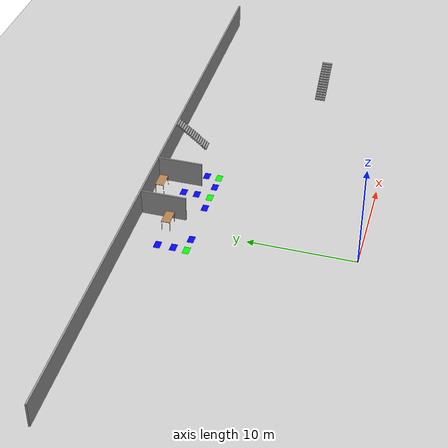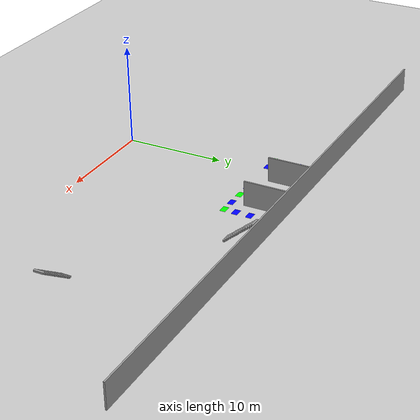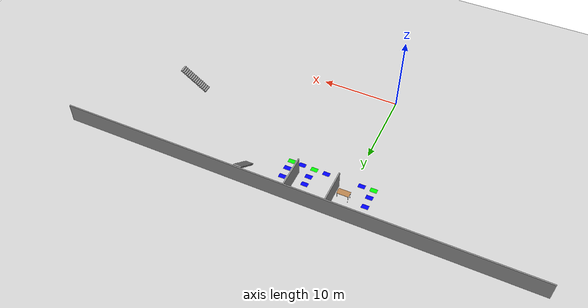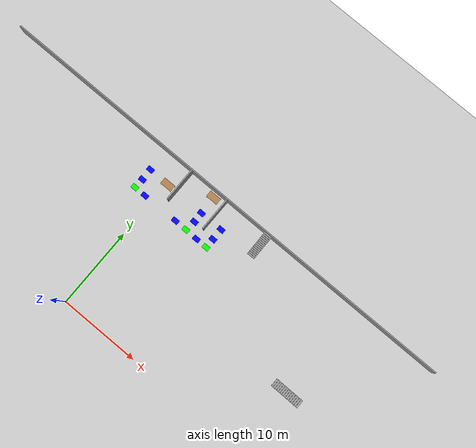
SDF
<sdf version="1.6">
 <world name="default">
  <model name="ground_plane">
   <pose>0 0 0.001 0 -0 0</pose>
   <static>1</static>
   <link name="link">
    <collision name="collision">
     <geometry><plane><normal>0 0 1</normal><size>100 100</size></plane></geometry>
     <surface><friction><ode><mu>100</mu><mu2>50</mu2></ode></friction></surface>
    </collision>
    <visual name="visual">
     <cast_shadows>0</cast_shadows>
     <geometry><plane><normal>0 0 1</normal><size>100 100</size></plane></geometry>
     <material>
      <script><uri>file://media/materials/scripts/gazebo.material</uri><name>Gazebo/Grey</name></script>
     </material>
    </visual>
   </link>
  </model>
  <model name="table_6">
   <static>1</static>
   <link name="link">
    <collision name="surface">
     <pose>0 0 1 0 -0 0</pose>
     <geometry><box><size>1.5 0.8 0.03</size></box></geometry>
     <surface><friction><ode><mu>0.6</mu><mu2>0.6</mu2></ode></friction></surface>
    </collision>
    <visual name="visual1">
     <pose>0 0 1 0 -0 0</pose>
     <geometry><box><size>1.5 0.8 0.03</size></box></geometry>
     <material>
      <script><uri>file://media/materials/scripts/gazebo.material</uri><name>Gazebo/Wood</name></script>
     </material>
    </visual>
    <collision name="front_left_leg">
     <pose>0.68 0.38 0.5 0 -0 0</pose>
     <geometry><cylinder><radius>0.02</radius><length>1</length></cylinder></geometry>
    </collision>
    <visual name="front_left_leg">
     <pose>0.68 0.38 0.5 0 -0 0</pose>
     <geometry><cylinder><radius>0.02</radius><length>1</length></cylinder></geometry>
     <material>
      <script><uri>file://media/materials/scripts/gazebo.material</uri><name>Gazebo/Grey</name></script>
     </material>
    </visual>
    <collision name="front_right_leg">
     <pose>0.68 -0.38 0.5 0 -0 0</pose>
     <geometry><cylinder><radius>0.02</radius><length>1</length></cylinder></geometry>
    </collision>
    <visual name="front_right_leg">
     <pose>0.68 -0.38 0.5 0 -0 0</pose>
     <geometry><cylinder><radius>0.02</radius><length>1</length></cylinder></geometry>
     <material>
      <script><uri>file://media/materials/scripts/gazebo.material</uri><name>Gazebo/Grey</name></script>
     </material>
    </visual>
    <collision name="back_right_leg">
     <pose>-0.68 -0.38 0.5 0 -0 0</pose>
     <geometry><cylinder><radius>0.02</radius><length>1</length></cylinder></geometry>
    </collision>
    <visual name="back_right_leg">
     <pose>-0.68 -0.38 0.5 0 -0 0</pose>
     <geometry><cylinder><radius>0.02</radius><length>1</length></cylinder></geometry>
     <material>
      <script><uri>file://media/materials/scripts/gazebo.material</uri><name>Gazebo/Grey</name></script>
     </material>
    </visual>
    <collision name="back_left_leg">
     <pose>-0.68 0.38 0.5 0 -0 0</pose>
     <geometry><cylinder><radius>0.02</radius><length>1</length></cylinder></geometry>
    </collision>
    <visual name="back_left_leg">
     <pose>-0.68 0.38 0.5 0 -0 0</pose>
     <geometry><cylinder><radius>0.02</radius><length>1</length></cylinder></geometry>
     <material>
      <script><uri>file://media/materials/scripts/gazebo.material</uri><name>Gazebo/Grey</name></script>
     </material>
    </visual>
   </link>
   <pose>0.272964 17.3657 0.001 0 -0 0</pose>
  </model>
  <model name="table_11">
   <static>1</static>
   <link name="link">
    <collision name="surface">
     <pose>0 0 1 0 -0 0</pose>
     <geometry><box><size>1.5 0.8 0.03</size></box></geometry>
     <surface><friction><ode><mu>0.6</mu><mu2>0.6</mu2></ode></friction></surface>
    </collision>
    <visual name="visual1">
     <pose>0 0 1 0 -0 0</pose>
     <geometry><box><size>1.5 0.8 0.03</size></box></geometry>
     <material>
      <script><uri>file://media/materials/scripts/gazebo.material</uri><name>Gazebo/Wood</name></script>
     </material>
    </visual>
    <collision name="front_left_leg">
     <pose>0.68 0.38 0.5 0 -0 0</pose>
     <geometry><cylinder><radius>0.02</radius><length>1</length></cylinder></geometry>
    </collision>
    <visual name="front_left_leg">
     <pose>0.68 0.38 0.5 0 -0 0</pose>
     <geometry><cylinder><radius>0.02</radius><length>1</length></cylinder></geometry>
     <material>
      <script><uri>file://media/materials/scripts/gazebo.material</uri><name>Gazebo/Grey</name></script>
     </material>
    </visual>
    <collision name="front_right_leg">
     <pose>0.68 -0.38 0.5 0 -0 0</pose>
     <geometry><cylinder><radius>0.02</radius><length>1</length></cylinder></geometry>
    </collision>
    <visual name="front_right_leg">
     <pose>0.68 -0.38 0.5 0 -0 0</pose>
     <geometry><cylinder><radius>0.02</radius><length>1</length></cylinder></geometry>
     <material>
      <script><uri>file://media/materials/scripts/gazebo.material</uri><name>Gazebo/Grey</name></script>
     </material>
    </visual>
    <collision name="back_right_leg">
     <pose>-0.68 -0.38 0.5 0 -0 0</pose>
     <geometry><cylinder><radius>0.02</radius><length>1</length></cylinder></geometry>
    </collision>
    <visual name="back_right_leg">
     <pose>-0.68 -0.38 0.5 0 -0 0</pose>
     <geometry><cylinder><radius>0.02</radius><length>1</length></cylinder></geometry>
     <material>
      <script><uri>file://media/materials/scripts/gazebo.material</uri><name>Gazebo/Grey</name></script>
     </material>
    </visual>
    <collision name="back_left_leg">
     <pose>-0.68 0.38 0.5 0 -0 0</pose>
     <geometry><cylinder><radius>0.02</radius><length>1</length></cylinder></geometry>
    </collision>
    <visual name="back_left_leg">
     <pose>-0.68 0.38 0.5 0 -0 0</pose>
     <geometry><cylinder><radius>0.02</radius><length>1</length></cylinder></geometry>
     <material>
      <script><uri>file://media/materials/scripts/gazebo.material</uri><name>Gazebo/Grey</name></script>
     </material>
    </visual>
   </link>
   <pose>5.18073 19.5521 0.001 0 -0 0</pose>
  </model>
  <model name="corridor_10">
   <link name="link">
    <pose>0 0 0.001 0 -0 0</pose>
    <inertial>
     <mass>0.0352517</mass>
     <inertia>
      <ixx>0.00099707</ixx>
      <ixy>0</ixy>
      <ixz>0</ixz>
      <iyy>0.00220147</iyy>
      <iyz>0</iyz>
      <izz>0.0031692</izz>
     </inertia>
     <pose>0 0 0.001 0 -0 0</pose>
    </inertial>
    <visual name="visual">
     <geometry><box><size>0.862743 0.578289 1e-06</size></box></geometry>
     <material>
      <script><name>Gazebo/Grey</name><uri>file://media/materials/scripts/gazebo.material</uri></script>
      <ambient>0 1 0 1</ambient>
      <diffuse>0 1 0 1</diffuse>
      <specular>0 1 0 1</specular>
      <emissive>0 1 0 1</emissive>
      <shader type="vertex"><normal_map>__default__</normal_map></shader>
     </material>
     <pose>0 0 0.001 0 -0 0</pose>
    </visual>
    <collision name="collision">
     <pose>0 0 0.001 0 -0 0</pose>
     <geometry><box><size>0.862743 0.578289 0.000477</size></box></geometry>
     <surface>
      <friction>
       <ode><mu>1</mu><mu2>1</mu2><fdir1>0 0 0</fdir1><slip1>0</slip1><slip2>0</slip2></ode>
       <torsional>
        <coefficient>1</coefficient>
        <patch_radius>0</patch_radius>
        <surface_radius>0</surface_radius>
        <use_patch_radius>1</use_patch_radius>
        <ode><slip>0</slip></ode>
       </torsional>
      </friction>
      <bounce><restitution_coefficient>0</restitution_coefficient><threshold>1e+06</threshold></bounce>
      <contact>
       <collide_without_contact>0</collide_without_contact>
       <collide_without_contact_bitmask>1</collide_without_contact_bitmask>
       <collide_bitmask>1</collide_bitmask>
       <ode>
        <soft_cfm>0</soft_cfm>
        <soft_erp>0.2</soft_erp>
        <kp>1e+13</kp>
        <kd>1</kd>
        <max_vel>0.01</max_vel>
        <min_depth>0</min_depth>
       </ode>
       <bullet>
        <split_impulse>1</split_impulse>
        <split_impulse_penetration_threshold>-0.01</split_impulse_penetration_threshold>
        <soft_cfm>0</soft_cfm>
        <soft_erp>0.2</soft_erp>
        <kp>1e+13</kp>
        <kd>1</kd>
       </bullet>
      </contact>
     </surface>
    </collision>
   </link>
   <static>1</static>
   <pose>8.06738 14.7859 0 0 -0 0</pose>
  </model>
  <model name="corridor_11">
   <link name="link">
    <pose>0 0 0.001 0 -0 0</pose>
    <inertial>
     <mass>0.0352517</mass>
     <inertia>
      <ixx>0.00099707</ixx>
      <ixy>0</ixy>
      <ixz>0</ixz>
      <iyy>0.00220147</iyy>
      <iyz>0</iyz>
      <izz>0.0031692</izz>
     </inertia>
     <pose>0 0 0.001 0 -0 0</pose>
    </inertial>
    <visual name="visual">
     <geometry><box><size>0.862743 0.578289 1e-06</size></box></geometry>
     <material>
      <script><name>Gazebo/Grey</name><uri>file://media/materials/scripts/gazebo.material</uri></script>
      <ambient>0 1 0 1</ambient>
      <diffuse>0 1 0 1</diffuse>
      <specular>0 1 0 1</specular>
      <emissive>0 1 0 1</emissive>
      <shader type="vertex"><normal_map>__default__</normal_map></shader>
     </material>
     <pose>0 0 0.001 0 -0 0</pose>
    </visual>
    <collision name="collision">
     <pose>0 0 0.001 0 -0 0</pose>
     <geometry><box><size>0.862743 0.578289 0.000477</size></box></geometry>
     <surface>
      <friction>
       <ode><mu>1</mu><mu2>1</mu2><fdir1>0 0 0</fdir1><slip1>0</slip1><slip2>0</slip2></ode>
       <torsional>
        <coefficient>1</coefficient>
        <patch_radius>0</patch_radius>
        <surface_radius>0</surface_radius>
        <use_patch_radius>1</use_patch_radius>
        <ode><slip>0</slip></ode>
       </torsional>
      </friction>
      <bounce><restitution_coefficient>0</restitution_coefficient><threshold>1e+06</threshold></bounce>
      <contact>
       <collide_without_contact>0</collide_without_contact>
       <collide_without_contact_bitmask>1</collide_without_contact_bitmask>
       <collide_bitmask>1</collide_bitmask>
       <ode>
        <soft_cfm>0</soft_cfm>
        <soft_erp>0.2</soft_erp>
        <kp>1e+13</kp>
        <kd>1</kd>
        <max_vel>0.01</max_vel>
        <min_depth>0</min_depth>
       </ode>
       <bullet>
        <split_impulse>1</split_impulse>
        <split_impulse_penetration_threshold>-0.01</split_impulse_penetration_threshold>
        <soft_cfm>0</soft_cfm>
        <soft_erp>0.2</soft_erp>
        <kp>1e+13</kp>
        <kd>1</kd>
       </bullet>
      </contact>
     </surface>
    </collision>
   </link>
   <static>1</static>
   <pose>5.04547 14.8469 0 0 -0 0</pose>
  </model>
  <model name="intersection_20">
   <link name="link">
    <pose>0 0 0.001 0 -0 0</pose>
    <inertial>
     <mass>0.0352517</mass>
     <inertia>
      <ixx>0.000997067</ixx>
      <ixy>0</ixy>
      <ixz>0</ixz>
      <iyy>0.00220147</iyy>
      <iyz>0</iyz>
      <izz>0.0031692</izz>
     </inertia>
     <pose>0 0 0.001 0 -0 0</pose>
    </inertial>
    <visual name="visual">
     <geometry><box><size>0.862743 0.578289 1e-06</size></box></geometry>
     <material>
      <script><name>Gazebo/Grey</name><uri>file://media/materials/scripts/gazebo.material</uri></script>
      <ambient>0 0 1 1</ambient>
      <diffuse>0 0 1 1</diffuse>
      <specular>0 0 1 1</specular>
      <emissive>0 0 1 1</emissive>
      <shader type="vertex"><normal_map>__default__</normal_map></shader>
     </material>
     <pose>0 0 0.001 0 -0 0</pose>
    </visual>
    <collision name="collision">
     <pose>0 0 0.001 0 -0 0</pose>
     <geometry><box><size>0.862743 0.578289 0.000477</size></box></geometry>
     <surface>
      <friction>
       <ode><mu>1</mu><mu2>1</mu2><fdir1>0 0 0</fdir1><slip1>0</slip1><slip2>0</slip2></ode>
       <torsional>
        <coefficient>1</coefficient>
        <patch_radius>0</patch_radius>
        <surface_radius>0</surface_radius>
        <use_patch_radius>1</use_patch_radius>
        <ode><slip>0</slip></ode>
       </torsional>
      </friction>
      <bounce><restitution_coefficient>0</restitution_coefficient><threshold>1e+06</threshold></bounce>
      <contact>
       <collide_without_contact>0</collide_without_contact>
       <collide_without_contact_bitmask>1</collide_without_contact_bitmask>
       <collide_bitmask>1</collide_bitmask>
       <ode>
        <soft_cfm>0</soft_cfm>
        <soft_erp>0.2</soft_erp>
        <kp>1e+13</kp>
        <kd>1</kd>
        <max_vel>0.01</max_vel>
        <min_depth>0</min_depth>
       </ode>
       <bullet>
        <split_impulse>1</split_impulse>
        <split_impulse_penetration_threshold>-0.01</split_impulse_penetration_threshold>
        <soft_cfm>0</soft_cfm>
        <soft_erp>0.2</soft_erp>
        <kp>1e+13</kp>
        <kd>1</kd>
       </bullet>
      </contact>
     </surface>
    </collision>
   </link>
   <static>1</static>
   <pose>8.08666 15.9813 0 0 -0 0</pose>
  </model>
  <model name="intersection_22">
   <link name="link">
    <pose>0 0 0.001 0 -0 0</pose>
    <inertial>
     <mass>0.0352517</mass>
     <inertia>
      <ixx>0.000997067</ixx>
      <ixy>0</ixy>
      <ixz>0</ixz>
      <iyy>0.00220147</iyy>
      <iyz>0</iyz>
      <izz>0.0031692</izz>
     </inertia>
     <pose>0 0 0.001 0 -0 0</pose>
    </inertial>
    <visual name="visual">
     <geometry><box><size>0.862743 0.578289 1e-06</size></box></geometry>
     <material>
      <script><name>Gazebo/Grey</name><uri>file://media/materials/scripts/gazebo.material</uri></script>
      <ambient>0 0 1 1</ambient>
      <diffuse>0 0 1 1</diffuse>
      <specular>0 0 1 1</specular>
      <emissive>0 0 1 1</emissive>
      <shader type="vertex"><normal_map>__default__</normal_map></shader>
     </material>
     <pose>0 0 0.001 0 -0 0</pose>
    </visual>
    <collision name="collision">
     <pose>0 0 0.001 0 -0 0</pose>
     <geometry><box><size>0.862743 0.578289 0.000477</size></box></geometry>
     <surface>
      <friction>
       <ode><mu>1</mu><mu2>1</mu2><fdir1>0 0 0</fdir1><slip1>0</slip1><slip2>0</slip2></ode>
       <torsional>
        <coefficient>1</coefficient>
        <patch_radius>0</patch_radius>
        <surface_radius>0</surface_radius>
        <use_patch_radius>1</use_patch_radius>
        <ode><slip>0</slip></ode>
       </torsional>
      </friction>
      <bounce><restitution_coefficient>0</restitution_coefficient><threshold>1e+06</threshold></bounce>
      <contact>
       <collide_without_contact>0</collide_without_contact>
       <collide_without_contact_bitmask>1</collide_without_contact_bitmask>
       <collide_bitmask>1</collide_bitmask>
       <ode>
        <soft_cfm>0</soft_cfm>
        <soft_erp>0.2</soft_erp>
        <kp>1e+13</kp>
        <kd>1</kd>
        <max_vel>0.01</max_vel>
        <min_depth>0</min_depth>
       </ode>
       <bullet>
        <split_impulse>1</split_impulse>
        <split_impulse_penetration_threshold>-0.01</split_impulse_penetration_threshold>
        <soft_cfm>0</soft_cfm>
        <soft_erp>0.2</soft_erp>
        <kp>1e+13</kp>
        <kd>1</kd>
       </bullet>
      </contact>
     </surface>
    </collision>
   </link>
   <static>1</static>
   <pose>5.209 16.1439 0 0 -0 0</pose>
  </model>
  <model name="corridor_13">
   <link name="link">
    <pose>0 0 0.001 0 -0 0</pose>
    <inertial>
     <mass>0.0352517</mass>
     <inertia>
      <ixx>0.00099707</ixx>
      <ixy>0</ixy>
      <ixz>0</ixz>
      <iyy>0.00220147</iyy>
      <iyz>0</iyz>
      <izz>0.0031692</izz>
     </inertia>
     <pose>0 0 0.001 0 -0 0</pose>
    </inertial>
    <visual name="visual">
     <geometry><box><size>0.862743 0.578289 1e-06</size></box></geometry>
     <material>
      <script><name>Gazebo/Grey</name><uri>file://media/materials/scripts/gazebo.material</uri></script>
      <ambient>0 1 0 1</ambient>
      <diffuse>0 1 0 1</diffuse>
      <specular>0 1 0 1</specular>
      <emissive>0 1 0 1</emissive>
      <shader type="vertex"><normal_map>__default__</normal_map></shader>
     </material>
     <pose>0 0 0.001 0 -0 0</pose>
    </visual>
    <collision name="collision">
     <pose>0 0 0.001 0 -0 0</pose>
     <geometry><box><size>0.862743 0.578289 0.000477</size></box></geometry>
     <surface>
      <friction>
       <ode><mu>1</mu><mu2>1</mu2><fdir1>0 0 0</fdir1><slip1>0</slip1><slip2>0</slip2></ode>
       <torsional>
        <coefficient>1</coefficient>
        <patch_radius>0</patch_radius>
        <surface_radius>0</surface_radius>
        <use_patch_radius>1</use_patch_radius>
        <ode><slip>0</slip></ode>
       </torsional>
      </friction>
      <bounce><restitution_coefficient>0</restitution_coefficient><threshold>1e+06</threshold></bounce>
      <contact>
       <collide_without_contact>0</collide_without_contact>
       <collide_without_contact_bitmask>1</collide_without_contact_bitmask>
       <collide_bitmask>1</collide_bitmask>
       <ode>
        <soft_cfm>0</soft_cfm>
        <soft_erp>0.2</soft_erp>
        <kp>1e+13</kp>
        <kd>1</kd>
        <max_vel>0.01</max_vel>
        <min_depth>0</min_depth>
       </ode>
       <bullet>
        <split_impulse>1</split_impulse>
        <split_impulse_penetration_threshold>-0.01</split_impulse_penetration_threshold>
        <soft_cfm>0</soft_cfm>
        <soft_erp>0.2</soft_erp>
        <kp>1e+13</kp>
        <kd>1</kd>
       </bullet>
      </contact>
     </surface>
    </collision>
   </link>
   <static>1</static>
   <pose>-2.50576 14.8019 0 0 -0 0</pose>
  </model>
  <model name="intersection_23">
   <link name="link">
    <pose>0 0 0.001 0 -0 0</pose>
    <inertial>
     <mass>0.0352517</mass>
     <inertia>
      <ixx>0.000997067</ixx>
      <ixy>0</ixy>
      <ixz>0</ixz>
      <iyy>0.00220147</iyy>
      <iyz>0</iyz>
      <izz>0.0031692</izz>
     </inertia>
     <pose>0 0 0.001 0 -0 0</pose>
    </inertial>
    <visual name="visual">
     <geometry><box><size>0.862743 0.578289 1e-06</size></box></geometry>
     <material>
      <script><name>Gazebo/Grey</name><uri>file://media/materials/scripts/gazebo.material</uri></script>
      <ambient>0 0 1 1</ambient>
      <diffuse>0 0 1 1</diffuse>
      <specular>0 0 1 1</specular>
      <emissive>0 0 1 1</emissive>
      <shader type="vertex"><normal_map>__default__</normal_map></shader>
     </material>
     <pose>0 0 0.001 0 -0 0</pose>
    </visual>
    <collision name="collision">
     <pose>0 0 0.001 0 -0 0</pose>
     <geometry><box><size>0.862743 0.578289 0.000477</size></box></geometry>
     <surface>
      <friction>
       <ode><mu>1</mu><mu2>1</mu2><fdir1>0 0 0</fdir1><slip1>0</slip1><slip2>0</slip2></ode>
       <torsional>
        <coefficient>1</coefficient>
        <patch_radius>0</patch_radius>
        <surface_radius>0</surface_radius>
        <use_patch_radius>1</use_patch_radius>
        <ode><slip>0</slip></ode>
       </torsional>
      </friction>
      <bounce><restitution_coefficient>0</restitution_coefficient><threshold>1e+06</threshold></bounce>
      <contact>
       <collide_without_contact>0</collide_without_contact>
       <collide_without_contact_bitmask>1</collide_without_contact_bitmask>
       <collide_bitmask>1</collide_bitmask>
       <ode>
        <soft_cfm>0</soft_cfm>
        <soft_erp>0.2</soft_erp>
        <kp>1e+13</kp>
        <kd>1</kd>
        <max_vel>0.01</max_vel>
        <min_depth>0</min_depth>
       </ode>
       <bullet>
        <split_impulse>1</split_impulse>
        <split_impulse_penetration_threshold>-0.01</split_impulse_penetration_threshold>
        <soft_cfm>0</soft_cfm>
        <soft_erp>0.2</soft_erp>
        <kp>1e+13</kp>
        <kd>1</kd>
       </bullet>
      </contact>
     </surface>
    </collision>
   </link>
   <static>1</static>
   <pose>-2.42973 16.0203 0 0 -0 0</pose>
  </model>
  <model name="intersection_6">
   <link name="link">
    <pose>0 0 0.001 0 -0 0</pose>
    <inertial>
     <mass>0.0352517</mass>
     <inertia>
      <ixx>0.000997067</ixx>
      <ixy>0</ixy>
      <ixz>0</ixz>
      <iyy>0.00220147</iyy>
      <iyz>0</iyz>
      <izz>0.0031692</izz>
     </inertia>
     <pose>0 0 0.001 0 -0 0</pose>
    </inertial>
    <visual name="visual">
     <geometry><box><size>0.862743 0.578289 1e-06</size></box></geometry>
     <material>
      <script><name>Gazebo/Grey</name><uri>file://media/materials/scripts/gazebo.material</uri></script>
      <ambient>0 0 1 1</ambient>
      <diffuse>0 0 1 1</diffuse>
      <specular>0 0 1 1</specular>
      <emissive>0 0 1 1</emissive>
      <shader type="vertex"><normal_map>__default__</normal_map></shader>
     </material>
     <pose>0 0 0.001 0 -0 0</pose>
    </visual>
    <collision name="collision">
     <pose>0 0 0.001 0 -0 0</pose>
     <geometry><box><size>0.862743 0.578289 0.000477</size></box></geometry>
     <surface>
      <friction>
       <ode><mu>1</mu><mu2>1</mu2><fdir1>0 0 0</fdir1><slip1>0</slip1><slip2>0</slip2></ode>
       <torsional>
        <coefficient>1</coefficient>
        <patch_radius>0</patch_radius>
        <surface_radius>0</surface_radius>
        <use_patch_radius>1</use_patch_radius>
        <ode><slip>0</slip></ode>
       </torsional>
      </friction>
      <bounce><restitution_coefficient>0</restitution_coefficient><threshold>1e+06</threshold></bounce>
      <contact>
       <collide_without_contact>0</collide_without_contact>
       <collide_without_contact_bitmask>1</collide_without_contact_bitmask>
       <collide_bitmask>1</collide_bitmask>
       <ode>
        <soft_cfm>0</soft_cfm>
        <soft_erp>0.2</soft_erp>
        <kp>1e+13</kp>
        <kd>1</kd>
        <max_vel>0.01</max_vel>
        <min_depth>0</min_depth>
       </ode>
       <bullet>
        <split_impulse>1</split_impulse>
        <split_impulse_penetration_threshold>-0.01</split_impulse_penetration_threshold>
        <soft_cfm>0</soft_cfm>
        <soft_erp>0.2</soft_erp>
        <kp>1e+13</kp>
        <kd>1</kd>
       </bullet>
      </contact>
     </surface>
    </collision>
   </link>
   <static>1</static>
   <pose>-1.01311 14.8032 0 0 -0 0</pose>
  </model>
  <model name="intersection_51">
   <link name="link">
    <pose>0 0 0.001 0 -0 0</pose>
    <inertial>
     <mass>0.0352517</mass>
     <inertia>
      <ixx>0.000997067</ixx>
      <ixy>0</ixy>
      <ixz>0</ixz>
      <iyy>0.00220147</iyy>
      <iyz>0</iyz>
      <izz>0.0031692</izz>
     </inertia>
     <pose>0 0 0.001 0 -0 0</pose>
    </inertial>
    <visual name="visual">
     <geometry><box><size>0.862743 0.578289 1e-06</size></box></geometry>
     <material>
      <script><name>Gazebo/Grey</name><uri>file://media/materials/scripts/gazebo.material</uri></script>
      <ambient>0 0 1 1</ambient>
      <diffuse>0 0 1 1</diffuse>
      <specular>0 0 1 1</specular>
      <emissive>0 0 1 1</emissive>
      <shader type="vertex"><normal_map>__default__</normal_map></shader>
     </material>
     <pose>0 0 0.001 0 -0 0</pose>
    </visual>
    <collision name="collision">
     <pose>0 0 0.001 0 -0 0</pose>
     <geometry><box><size>0.862743 0.578289 0.000477</size></box></geometry>
     <surface>
      <friction>
       <ode><mu>1</mu><mu2>1</mu2><fdir1>0 0 0</fdir1><slip1>0</slip1><slip2>0</slip2></ode>
       <torsional>
        <coefficient>1</coefficient>
        <patch_radius>0</patch_radius>
        <surface_radius>0</surface_radius>
        <use_patch_radius>1</use_patch_radius>
        <ode><slip>0</slip></ode>
       </torsional>
      </friction>
      <bounce><restitution_coefficient>0</restitution_coefficient><threshold>1e+06</threshold></bounce>
      <contact>
       <collide_without_contact>0</collide_without_contact>
       <collide_without_contact_bitmask>1</collide_without_contact_bitmask>
       <collide_bitmask>1</collide_bitmask>
       <ode>
        <soft_cfm>0</soft_cfm>
        <soft_erp>0.2</soft_erp>
        <kp>1e+13</kp>
        <kd>1</kd>
        <max_vel>0.01</max_vel>
        <min_depth>0</min_depth>
       </ode>
       <bullet>
        <split_impulse>1</split_impulse>
        <split_impulse_penetration_threshold>-0.01</split_impulse_penetration_threshold>
        <soft_cfm>0</soft_cfm>
        <soft_erp>0.2</soft_erp>
        <kp>1e+13</kp>
        <kd>1</kd>
       </bullet>
      </contact>
     </surface>
    </collision>
   </link>
   <static>1</static>
   <pose>6.63947 14.8043 0 0 -0 0</pose>
  </model>
  <model name="intersection_57">
   <link name="link">
    <pose>0 0 0.001 0 -0 0</pose>
    <inertial>
     <mass>0.0352517</mass>
     <inertia>
      <ixx>0.000997067</ixx>
      <ixy>0</ixy>
      <ixz>0</ixz>
      <iyy>0.00220147</iyy>
      <iyz>0</iyz>
      <izz>0.0031692</izz>
     </inertia>
     <pose>0 0 0.001 0 -0 0</pose>
    </inertial>
    <visual name="visual">
     <geometry><box><size>0.862743 0.578289 1e-06</size></box></geometry>
     <material>
      <script><name>Gazebo/Grey</name><uri>file://media/materials/scripts/gazebo.material</uri></script>
      <ambient>0 0 1 1</ambient>
      <diffuse>0 0 1 1</diffuse>
      <specular>0 0 1 1</specular>
      <emissive>0 0 1 1</emissive>
      <shader type="vertex"><normal_map>__default__</normal_map></shader>
     </material>
     <pose>0 0 0.001 0 -0 0</pose>
    </visual>
    <collision name="collision">
     <pose>0 0 0.001 0 -0 0</pose>
     <geometry><box><size>0.862743 0.578289 0.000477</size></box></geometry>
     <surface>
      <friction>
       <ode><mu>1</mu><mu2>1</mu2><fdir1>0 0 0</fdir1><slip1>0</slip1><slip2>0</slip2></ode>
       <torsional>
        <coefficient>1</coefficient>
        <patch_radius>0</patch_radius>
        <surface_radius>0</surface_radius>
        <use_patch_radius>1</use_patch_radius>
        <ode><slip>0</slip></ode>
       </torsional>
      </friction>
      <bounce><restitution_coefficient>0</restitution_coefficient><threshold>1e+06</threshold></bounce>
      <contact>
       <collide_without_contact>0</collide_without_contact>
       <collide_without_contact_bitmask>1</collide_without_contact_bitmask>
       <collide_bitmask>1</collide_bitmask>
       <ode>
        <soft_cfm>0</soft_cfm>
        <soft_erp>0.2</soft_erp>
        <kp>1e+13</kp>
        <kd>1</kd>
        <max_vel>0.01</max_vel>
        <min_depth>0</min_depth>
       </ode>
       <bullet>
        <split_impulse>1</split_impulse>
        <split_impulse_penetration_threshold>-0.01</split_impulse_penetration_threshold>
        <soft_cfm>0</soft_cfm>
        <soft_erp>0.2</soft_erp>
        <kp>1e+13</kp>
        <kd>1</kd>
       </bullet>
      </contact>
     </surface>
    </collision>
   </link>
   <static>1</static>
   <pose>3.47327 14.8545 0 0 -0 0</pose>
  </model>
  <model name="Se1_cut">
   <pose>3.62364 13.9276 0 0 -0 0</pose>
   <link name="Stairs_0">
    <visual name="Stairs_0_Visual_0">
     <pose>8.95439 3.41699 0.083333 0 -0 -3.14159</pose>
     <geometry><box><size>1 0.196093 0.166667</size></box></geometry>
     <material>
      <script><uri>file://media/materials/scripts/gazebo.material</uri><name>Gazebo/Grey</name></script>
      <ambient>1 1 1 1</ambient>
     </material>
    </visual>
    <collision name="Stairs_0_Collision_0">
     <geometry><box><size>1 0.196093 0.166667</size></box></geometry>
     <pose>8.95439 3.41699 0.083333 0 -0 -3.14159</pose>
    </collision>
    <visual name="Stairs_0_Visual_1">
     <pose>8.95439 3.61308 0.25 0 -0 -3.14159</pose>
     <geometry><box><size>1 0.196093 0.166667</size></box></geometry>
     <material>
      <script><uri>file://media/materials/scripts/gazebo.material</uri><name>Gazebo/Grey</name></script>
      <ambient>1 1 1 1</ambient>
     </material>
    </visual>
    <collision name="Stairs_0_Collision_1">
     <geometry><box><size>1 0.196093 0.166667</size></box></geometry>
     <pose>8.95439 3.61308 0.25 0 -0 -3.14159</pose>
    </collision>
    <visual name="Stairs_0_Visual_2">
     <pose>8.95439 3.80917 0.416667 0 -0 -3.14159</pose>
     <geometry><box><size>1 0.196093 0.166667</size></box></geometry>
     <material>
      <script><uri>file://media/materials/scripts/gazebo.material</uri><name>Gazebo/Grey</name></script>
      <ambient>1 1 1 1</ambient>
     </material>
    </visual>
    <collision name="Stairs_0_Collision_2">
     <geometry><box><size>1 0.196093 0.166667</size></box></geometry>
     <pose>8.95439 3.80917 0.416667 0 -0 -3.14159</pose>
    </collision>
    <visual name="Stairs_0_Visual_3">
     <pose>8.95439 4.00526 0.583333 0 -0 -3.14159</pose>
     <geometry><box><size>1 0.196093 0.166667</size></box></geometry>
     <material>
      <script><uri>file://media/materials/scripts/gazebo.material</uri><name>Gazebo/Grey</name></script>
      <ambient>1 1 1 1</ambient>
     </material>
    </visual>
    <collision name="Stairs_0_Collision_3">
     <geometry><box><size>1 0.196093 0.166667</size></box></geometry>
     <pose>8.95439 4.00526 0.583333 0 -0 -3.14159</pose>
    </collision>
    <visual name="Stairs_0_Visual_4">
     <pose>8.95439 4.20136 0.75 0 -0 -3.14159</pose>
     <geometry><box><size>1 0.196093 0.166667</size></box></geometry>
     <material>
      <script><uri>file://media/materials/scripts/gazebo.material</uri><name>Gazebo/Grey</name></script>
      <ambient>1 1 1 1</ambient>
     </material>
    </visual>
    <collision name="Stairs_0_Collision_4">
     <geometry><box><size>1 0.196093 0.166667</size></box></geometry>
     <pose>8.95439 4.20136 0.75 0 -0 -3.14159</pose>
    </collision>
    <visual name="Stairs_0_Visual_5">
     <pose>8.95439 4.39745 0.916667 0 -0 -3.14159</pose>
     <geometry><box><size>1 0.196093 0.166667</size></box></geometry>
     <material>
      <script><uri>file://media/materials/scripts/gazebo.material</uri><name>Gazebo/Grey</name></script>
      <ambient>1 1 1 1</ambient>
     </material>
    </visual>
    <collision name="Stairs_0_Collision_5">
     <geometry><box><size>1 0.196093 0.166667</size></box></geometry>
     <pose>8.95439 4.39745 0.916667 0 -0 -3.14159</pose>
    </collision>
    <visual name="Stairs_0_Visual_6">
     <pose>8.95439 4.59354 1.08333 0 -0 -3.14159</pose>
     <geometry><box><size>1 0.196093 0.166667</size></box></geometry>
     <material>
      <script><uri>file://media/materials/scripts/gazebo.material</uri><name>Gazebo/Grey</name></script>
      <ambient>1 1 1 1</ambient>
     </material>
    </visual>
    <collision name="Stairs_0_Collision_6">
     <geometry><box><size>1 0.196093 0.166667</size></box></geometry>
     <pose>8.95439 4.59354 1.08333 0 -0 -3.14159</pose>
    </collision>
    <visual name="Stairs_0_Visual_7">
     <pose>8.95439 4.78964 1.25 0 -0 -3.14159</pose>
     <geometry><box><size>1 0.196093 0.166667</size></box></geometry>
     <material>
      <script><uri>file://media/materials/scripts/gazebo.material</uri><name>Gazebo/Grey</name></script>
      <ambient>1 1 1 1</ambient>
     </material>
    </visual>
    <collision name="Stairs_0_Collision_7">
     <geometry><box><size>1 0.196093 0.166667</size></box></geometry>
     <pose>8.95439 4.78964 1.25 0 -0 -3.14159</pose>
    </collision>
    <visual name="Stairs_0_Visual_8">
     <pose>8.95439 4.98573 1.41667 0 -0 -3.14159</pose>
     <geometry><box><size>1 0.196093 0.166667</size></box></geometry>
     <material>
      <script><uri>file://media/materials/scripts/gazebo.material</uri><name>Gazebo/Grey</name></script>
      <ambient>1 1 1 1</ambient>
     </material>
    </visual>
    <collision name="Stairs_0_Collision_8">
     <geometry><box><size>1 0.196093 0.166667</size></box></geometry>
     <pose>8.95439 4.98573 1.41667 0 -0 -3.14159</pose>
    </collision>
    <visual name="Stairs_0_Visual_9">
     <pose>8.95439 5.18182 1.58333 0 -0 -3.14159</pose>
     <geometry><box><size>1 0.196093 0.166667</size></box></geometry>
     <material>
      <script><uri>file://media/materials/scripts/gazebo.material</uri><name>Gazebo/Grey</name></script>
      <ambient>1 1 1 1</ambient>
     </material>
    </visual>
    <collision name="Stairs_0_Collision_9">
     <geometry><box><size>1 0.196093 0.166667</size></box></geometry>
     <pose>8.95439 5.18182 1.58333 0 -0 -3.14159</pose>
    </collision>
    <visual name="Stairs_0_Visual_10">
     <pose>8.95439 5.37792 1.75 0 -0 -3.14159</pose>
     <geometry><box><size>1 0.196093 0.166667</size></box></geometry>
     <material>
      <script><uri>file://media/materials/scripts/gazebo.material</uri><name>Gazebo/Grey</name></script>
      <ambient>1 1 1 1</ambient>
     </material>
    </visual>
    <collision name="Stairs_0_Collision_10">
     <geometry><box><size>1 0.196093 0.166667</size></box></geometry>
     <pose>8.95439 5.37792 1.75 0 -0 -3.14159</pose>
    </collision>
    <visual name="Stairs_0_Visual_11">
     <pose>8.95439 5.57401 1.91667 0 -0 -3.14159</pose>
     <geometry><box><size>1 0.196093 0.166667</size></box></geometry>
     <material>
      <script><uri>file://media/materials/scripts/gazebo.material</uri><name>Gazebo/Grey</name></script>
      <ambient>1 1 1 1</ambient>
     </material>
    </visual>
    <collision name="Stairs_0_Collision_11">
     <geometry><box><size>1 0.196093 0.166667</size></box></geometry>
     <pose>8.95439 5.57401 1.91667 0 -0 -3.14159</pose>
    </collision>
    <visual name="Stairs_0_Visual_12">
     <pose>8.95439 5.7701 2.08333 0 -0 -3.14159</pose>
     <geometry><box><size>1 0.196093 0.166667</size></box></geometry>
     <material>
      <script><uri>file://media/materials/scripts/gazebo.material</uri><name>Gazebo/Grey</name></script>
      <ambient>1 1 1 1</ambient>
     </material>
    </visual>
    <collision name="Stairs_0_Collision_12">
     <geometry><box><size>1 0.196093 0.166667</size></box></geometry>
     <pose>8.95439 5.7701 2.08333 0 -0 -3.14159</pose>
    </collision>
    <visual name="Stairs_0_Visual_13">
     <pose>8.95439 5.9662 2.25 0 -0 -3.14159</pose>
     <geometry><box><size>1 0.196093 0.166667</size></box></geometry>
     <material>
      <script><uri>file://media/materials/scripts/gazebo.material</uri><name>Gazebo/Grey</name></script>
      <ambient>1 1 1 1</ambient>
     </material>
    </visual>
    <collision name="Stairs_0_Collision_13">
     <geometry><box><size>1 0.196093 0.166667</size></box></geometry>
     <pose>8.95439 5.9662 2.25 0 -0 -3.14159</pose>
    </collision>
    <visual name="Stairs_0_Visual_14">
     <pose>8.95439 6.16229 2.41667 0 -0 -3.14159</pose>
     <geometry><box><size>1 0.196093 0.166667</size></box></geometry>
     <material>
      <script><uri>file://media/materials/scripts/gazebo.material</uri><name>Gazebo/Grey</name></script>
      <ambient>1 1 1 1</ambient>
     </material>
    </visual>
    <collision name="Stairs_0_Collision_14">
     <geometry><box><size>1 0.196093 0.166667</size></box></geometry>
     <pose>8.95439 6.16229 2.41667 0 -0 -3.14159</pose>
    </collision>
   </link>
   <link name="Stairs_1">
    <visual name="Stairs_1_Visual_0">
     <pose>20.036 -5.73074 0.083333 0 -0 1.5708</pose>
     <geometry><box><size>1 0.233333 0.166667</size></box></geometry>
     <material>
      <script><uri>file://media/materials/scripts/gazebo.material</uri><name>Gazebo/Grey</name></script>
      <ambient>1 1 1 1</ambient>
     </material>
    </visual>
    <collision name="Stairs_1_Collision_0">
     <geometry><box><size>1 0.233333 0.166667</size></box></geometry>
     <pose>20.036 -5.73074 0.083333 0 -0 1.5708</pose>
    </collision>
    <visual name="Stairs_1_Visual_1">
     <pose>20.2693 -5.73074 0.25 0 -0 1.5708</pose>
     <geometry><box><size>1 0.233333 0.166667</size></box></geometry>
     <material>
      <script><uri>file://media/materials/scripts/gazebo.material</uri><name>Gazebo/Grey</name></script>
      <ambient>1 1 1 1</ambient>
     </material>
    </visual>
    <collision name="Stairs_1_Collision_1">
     <geometry><box><size>1 0.233333 0.166667</size></box></geometry>
     <pose>20.2693 -5.73074 0.25 0 -0 1.5708</pose>
    </collision>
    <visual name="Stairs_1_Visual_2">
     <pose>20.5026 -5.73074 0.416667 0 -0 1.5708</pose>
     <geometry><box><size>1 0.233333 0.166667</size></box></geometry>
     <material>
      <script><uri>file://media/materials/scripts/gazebo.material</uri><name>Gazebo/Grey</name></script>
      <ambient>1 1 1 1</ambient>
     </material>
    </visual>
    <collision name="Stairs_1_Collision_2">
     <geometry><box><size>1 0.233333 0.166667</size></box></geometry>
     <pose>20.5026 -5.73074 0.416667 0 -0 1.5708</pose>
    </collision>
    <visual name="Stairs_1_Visual_3">
     <pose>20.736 -5.73074 0.583333 0 -0 1.5708</pose>
     <geometry><box><size>1 0.233333 0.166667</size></box></geometry>
     <material>
      <script><uri>file://media/materials/scripts/gazebo.material</uri><name>Gazebo/Grey</name></script>
      <ambient>1 1 1 1</ambient>
     </material>
    </visual>
    <collision name="Stairs_1_Collision_3">
     <geometry><box><size>1 0.233333 0.166667</size></box></geometry>
     <pose>20.736 -5.73074 0.583333 0 -0 1.5708</pose>
    </collision>
    <visual name="Stairs_1_Visual_4">
     <pose>20.9693 -5.73074 0.75 0 -0 1.5708</pose>
     <geometry><box><size>1 0.233333 0.166667</size></box></geometry>
     <material>
      <script><uri>file://media/materials/scripts/gazebo.material</uri><name>Gazebo/Grey</name></script>
      <ambient>1 1 1 1</ambient>
     </material>
    </visual>
    <collision name="Stairs_1_Collision_4">
     <geometry><box><size>1 0.233333 0.166667</size></box></geometry>
     <pose>20.9693 -5.73074 0.75 0 -0 1.5708</pose>
    </collision>
    <visual name="Stairs_1_Visual_5">
     <pose>21.2026 -5.73074 0.916667 0 -0 1.5708</pose>
     <geometry><box><size>1 0.233333 0.166667</size></box></geometry>
     <material>
      <script><uri>file://media/materials/scripts/gazebo.material</uri><name>Gazebo/Grey</name></script>
      <ambient>1 1 1 1</ambient>
     </material>
    </visual>
    <collision name="Stairs_1_Collision_5">
     <geometry><box><size>1 0.233333 0.166667</size></box></geometry>
     <pose>21.2026 -5.73074 0.916667 0 -0 1.5708</pose>
    </collision>
    <visual name="Stairs_1_Visual_6">
     <pose>21.436 -5.73074 1.08333 0 -0 1.5708</pose>
     <geometry><box><size>1 0.233333 0.166667</size></box></geometry>
     <material>
      <script><uri>file://media/materials/scripts/gazebo.material</uri><name>Gazebo/Grey</name></script>
      <ambient>1 1 1 1</ambient>
     </material>
    </visual>
    <collision name="Stairs_1_Collision_6">
     <geometry><box><size>1 0.233333 0.166667</size></box></geometry>
     <pose>21.436 -5.73074 1.08333 0 -0 1.5708</pose>
    </collision>
    <visual name="Stairs_1_Visual_7">
     <pose>21.6693 -5.73074 1.25 0 -0 1.5708</pose>
     <geometry><box><size>1 0.233333 0.166667</size></box></geometry>
     <material>
      <script><uri>file://media/materials/scripts/gazebo.material</uri><name>Gazebo/Grey</name></script>
      <ambient>1 1 1 1</ambient>
     </material>
    </visual>
    <collision name="Stairs_1_Collision_7">
     <geometry><box><size>1 0.233333 0.166667</size></box></geometry>
     <pose>21.6693 -5.73074 1.25 0 -0 1.5708</pose>
    </collision>
    <visual name="Stairs_1_Visual_8">
     <pose>21.9026 -5.73074 1.41667 0 -0 1.5708</pose>
     <geometry><box><size>1 0.233333 0.166667</size></box></geometry>
     <material>
      <script><uri>file://media/materials/scripts/gazebo.material</uri><name>Gazebo/Grey</name></script>
      <ambient>1 1 1 1</ambient>
     </material>
    </visual>
    <collision name="Stairs_1_Collision_8">
     <geometry><box><size>1 0.233333 0.166667</size></box></geometry>
     <pose>21.9026 -5.73074 1.41667 0 -0 1.5708</pose>
    </collision>
    <visual name="Stairs_1_Visual_9">
     <pose>22.136 -5.73074 1.58333 0 -0 1.5708</pose>
     <geometry><box><size>1 0.233333 0.166667</size></box></geometry>
     <material>
      <script><uri>file://media/materials/scripts/gazebo.material</uri><name>Gazebo/Grey</name></script>
      <ambient>1 1 1 1</ambient>
     </material>
    </visual>
    <collision name="Stairs_1_Collision_9">
     <geometry><box><size>1 0.233333 0.166667</size></box></geometry>
     <pose>22.136 -5.73074 1.58333 0 -0 1.5708</pose>
    </collision>
    <visual name="Stairs_1_Visual_10">
     <pose>22.3693 -5.73074 1.75 0 -0 1.5708</pose>
     <geometry><box><size>1 0.233333 0.166667</size></box></geometry>
     <material>
      <script><uri>file://media/materials/scripts/gazebo.material</uri><name>Gazebo/Grey</name></script>
      <ambient>1 1 1 1</ambient>
     </material>
    </visual>
    <collision name="Stairs_1_Collision_10">
     <geometry><box><size>1 0.233333 0.166667</size></box></geometry>
     <pose>22.3693 -5.73074 1.75 0 -0 1.5708</pose>
    </collision>
    <visual name="Stairs_1_Visual_11">
     <pose>22.6026 -5.73074 1.91667 0 -0 1.5708</pose>
     <geometry><box><size>1 0.233333 0.166667</size></box></geometry>
     <material>
      <script><uri>file://media/materials/scripts/gazebo.material</uri><name>Gazebo/Grey</name></script>
      <ambient>1 1 1 1</ambient>
     </material>
    </visual>
    <collision name="Stairs_1_Collision_11">
     <geometry><box><size>1 0.233333 0.166667</size></box></geometry>
     <pose>22.6026 -5.73074 1.91667 0 -0 1.5708</pose>
    </collision>
    <visual name="Stairs_1_Visual_12">
     <pose>22.836 -5.73074 2.08333 0 -0 1.5708</pose>
     <geometry><box><size>1 0.233333 0.166667</size></box></geometry>
     <material>
      <script><uri>file://media/materials/scripts/gazebo.material</uri><name>Gazebo/Grey</name></script>
      <ambient>1 1 1 1</ambient>
     </material>
    </visual>
    <collision name="Stairs_1_Collision_12">
     <geometry><box><size>1 0.233333 0.166667</size></box></geometry>
     <pose>22.836 -5.73074 2.08333 0 -0 1.5708</pose>
    </collision>
    <visual name="Stairs_1_Visual_13">
     <pose>23.0693 -5.73074 2.25 0 -0 1.5708</pose>
     <geometry><box><size>1 0.233333 0.166667</size></box></geometry>
     <material>
      <script><uri>file://media/materials/scripts/gazebo.material</uri><name>Gazebo/Grey</name></script>
      <ambient>1 1 1 1</ambient>
     </material>
    </visual>
    <collision name="Stairs_1_Collision_13">
     <geometry><box><size>1 0.233333 0.166667</size></box></geometry>
     <pose>23.0693 -5.73074 2.25 0 -0 1.5708</pose>
    </collision>
    <visual name="Stairs_1_Visual_14">
     <pose>23.3026 -5.73074 2.41667 0 -0 1.5708</pose>
     <geometry><box><size>1 0.233333 0.166667</size></box></geometry>
     <material>
      <script><uri>file://media/materials/scripts/gazebo.material</uri><name>Gazebo/Grey</name></script>
      <ambient>1 1 1 1</ambient>
     </material>
    </visual>
    <collision name="Stairs_1_Collision_14">
     <geometry><box><size>1 0.233333 0.166667</size></box></geometry>
     <pose>23.3026 -5.73074 2.41667 0 -0 1.5708</pose>
    </collision>
   </link>
   <link name="Wall_5">
    <collision name="Wall_5_Collision">
     <geometry><box><size>60.25 0.15 2.5</size></box></geometry>
     <pose>0 0 1.25 0 -0 0</pose>
    </collision>
    <visual name="Wall_5_Visual">
     <pose>0 0 1.25 0 -0 0</pose>
     <geometry><box><size>60.25 0.15 2.5</size></box></geometry>
     <material>
      <script><uri>file://media/materials/scripts/gazebo.material</uri><name>Gazebo/Grey</name></script>
      <ambient>1 1 1 1</ambient>
     </material>
    </visual>
    <pose>2.46862 6.375 0 0 -0 3.14159</pose>
   </link>
   <link name="Wall_57">
    <collision name="Wall_57_Collision">
     <geometry><box><size>4.25 0.15 2.5</size></box></geometry>
     <pose>0 0 1.25 0 -0 0</pose>
    </collision>
    <visual name="Wall_57_Visual">
     <pose>0 0 1.25 0 -0 0</pose>
     <geometry><box><size>4.25 0.15 2.5</size></box></geometry>
     <material>
      <script><uri>file://media/materials/scripts/gazebo.material</uri><name>Gazebo/Grey</name></script>
      <ambient>1 1 1 1</ambient>
     </material>
    </visual>
    <pose>-2.16437 4.21819 0 0 0 -1.5708</pose>
   </link>
   <link name="Wall_59">
    <collision name="Wall_59_Collision">
     <geometry><box><size>4.25 0.15 2.5</size></box></geometry>
     <pose>0 0 1.25 0 -0 0</pose>
    </collision>
    <visual name="Wall_59_Visual">
     <pose>0 0 1.25 0 -0 0</pose>
     <geometry><box><size>4.25 0.15 2.5</size></box></geometry>
     <material>
      <script><uri>file://media/materials/scripts/gazebo.material</uri><name>Gazebo/Grey</name></script>
      <ambient>1 1 1 1</ambient>
     </material>
    </visual>
    <pose>2.96947 4.24479 0 0 0 -1.5708</pose>
   </link>
   <static>1</static>
  </model>
  <model name="intersection_33_clone_0">
   <link name="link">
    <pose>0 0 0.001 0 -0 0</pose>
    <inertial>
     <mass>0.0352517</mass>
     <inertia>
      <ixx>0.000997067</ixx>
      <ixy>0</ixy>
      <ixz>0</ixz>
      <iyy>0.00220147</iyy>
      <iyz>0</iyz>
      <izz>0.0031692</izz>
     </inertia>
     <pose>0 0 0.001 0 -0 0</pose>
    </inertial>
    <visual name="visual">
     <geometry><box><size>0.862743 0.578289 1e-06</size></box></geometry>
     <material>
      <script><name>Gazebo/Grey</name><uri>file://media/materials/scripts/gazebo.material</uri></script>
      <ambient>0 0 1 1</ambient>
      <diffuse>0 0 1 1</diffuse>
      <specular>0 0 1 1</specular>
      <emissive>0 0 1 1</emissive>
      <shader type="vertex"><normal_map>__default__</normal_map></shader>
     </material>
     <pose>0 0 0.001 0 -0 0</pose>
    </visual>
    <collision name="collision">
     <pose>0 0 0.001 0 -0 0</pose>
     <geometry><box><size>0.862743 0.578289 0.000477</size></box></geometry>
     <surface>
      <friction>
       <ode><mu>1</mu><mu2>1</mu2><fdir1>0 0 0</fdir1><slip1>0</slip1><slip2>0</slip2></ode>
       <torsional>
        <coefficient>1</coefficient>
        <patch_radius>0</patch_radius>
        <surface_radius>0</surface_radius>
        <use_patch_radius>1</use_patch_radius>
        <ode><slip>0</slip></ode>
       </torsional>
      </friction>
      <bounce><restitution_coefficient>0</restitution_coefficient><threshold>1e+06</threshold></bounce>
      <contact>
       <collide_without_contact>0</collide_without_contact>
       <collide_without_contact_bitmask>1</collide_without_contact_bitmask>
       <collide_bitmask>1</collide_bitmask>
       <ode>
        <soft_cfm>0</soft_cfm>
        <soft_erp>0.2</soft_erp>
        <kp>1e+13</kp>
        <kd>1</kd>
        <max_vel>0.01</max_vel>
        <min_depth>0</min_depth>
       </ode>
       <bullet>
        <split_impulse>1</split_impulse>
        <split_impulse_penetration_threshold>-0.01</split_impulse_penetration_threshold>
        <soft_cfm>0</soft_cfm>
        <soft_erp>0.2</soft_erp>
        <kp>1e+13</kp>
        <kd>1</kd>
       </bullet>
      </contact>
     </surface>
    </collision>
   </link>
   <static>1</static>
   <pose>-2.46809 17.4741 0.011897 0 -0 0</pose>
  </model>
  <model name="intersection_33_clone_1">
   <link name="link">
    <pose>0 0 0.001 0 -0 0</pose>
    <inertial>
     <mass>0.0352517</mass>
     <inertia>
      <ixx>0.000997067</ixx>
      <ixy>0</ixy>
      <ixz>0</ixz>
      <iyy>0.00220147</iyy>
      <iyz>0</iyz>
      <izz>0.0031692</izz>
     </inertia>
     <pose>0 0 0.001 0 -0 0</pose>
    </inertial>
    <visual name="visual">
     <geometry><box><size>0.862743 0.578289 1e-06</size></box></geometry>
     <material>
      <script><name>Gazebo/Grey</name><uri>file://media/materials/scripts/gazebo.material</uri></script>
      <ambient>0 0 1 1</ambient>
      <diffuse>0 0 1 1</diffuse>
      <specular>0 0 1 1</specular>
      <emissive>0 0 1 1</emissive>
      <shader type="vertex"><normal_map>__default__</normal_map></shader>
     </material>
     <pose>0 0 0.001 0 -0 0</pose>
    </visual>
    <collision name="collision">
     <pose>0 0 0.001 0 -0 0</pose>
     <geometry><box><size>0.862743 0.578289 0.000477</size></box></geometry>
     <surface>
      <friction>
       <ode><mu>1</mu><mu2>1</mu2><fdir1>0 0 0</fdir1><slip1>0</slip1><slip2>0</slip2></ode>
       <torsional>
        <coefficient>1</coefficient>
        <patch_radius>0</patch_radius>
        <surface_radius>0</surface_radius>
        <use_patch_radius>1</use_patch_radius>
        <ode><slip>0</slip></ode>
       </torsional>
      </friction>
      <bounce><restitution_coefficient>0</restitution_coefficient><threshold>1e+06</threshold></bounce>
      <contact>
       <collide_without_contact>0</collide_without_contact>
       <collide_without_contact_bitmask>1</collide_without_contact_bitmask>
       <collide_bitmask>1</collide_bitmask>
       <ode>
        <soft_cfm>0</soft_cfm>
        <soft_erp>0.2</soft_erp>
        <kp>1e+13</kp>
        <kd>1</kd>
        <max_vel>0.01</max_vel>
        <min_depth>0</min_depth>
       </ode>
       <bullet>
        <split_impulse>1</split_impulse>
        <split_impulse_penetration_threshold>-0.01</split_impulse_penetration_threshold>
        <soft_cfm>0</soft_cfm>
        <soft_erp>0.2</soft_erp>
        <kp>1e+13</kp>
        <kd>1</kd>
       </bullet>
      </contact>
     </surface>
    </collision>
   </link>
   <static>1</static>
   <pose>5.178 17.4112 0.011897 0 -0 0</pose>
  </model>
  <model name="intersection_33_clone_2">
   <link name="link">
    <pose>0 0 0.001 0 -0 0</pose>
    <inertial>
     <mass>0.0352517</mass>
     <inertia>
      <ixx>0.000997067</ixx>
      <ixy>0</ixy>
      <ixz>0</ixz>
      <iyy>0.00220147</iyy>
      <iyz>0</iyz>
      <izz>0.0031692</izz>
     </inertia>
     <pose>0 0 0.001 0 -0 0</pose>
    </inertial>
    <visual name="visual">
     <geometry><box><size>0.862743 0.578289 1e-06</size></box></geometry>
     <material>
      <script><name>Gazebo/Grey</name><uri>file://media/materials/scripts/gazebo.material</uri></script>
      <ambient>0 0 1 1</ambient>
      <diffuse>0 0 1 1</diffuse>
      <specular>0 0 1 1</specular>
      <emissive>0 0 1 1</emissive>
      <shader type="vertex"><normal_map>__default__</normal_map></shader>
     </material>
     <pose>0 0 0.001 0 -0 0</pose>
    </visual>
    <collision name="collision">
     <pose>0 0 0.001 0 -0 0</pose>
     <geometry><box><size>0.862743 0.578289 0.000477</size></box></geometry>
     <surface>
      <friction>
       <ode><mu>1</mu><mu2>1</mu2><fdir1>0 0 0</fdir1><slip1>0</slip1><slip2>0</slip2></ode>
       <torsional>
        <coefficient>1</coefficient>
        <patch_radius>0</patch_radius>
        <surface_radius>0</surface_radius>
        <use_patch_radius>1</use_patch_radius>
        <ode><slip>0</slip></ode>
       </torsional>
      </friction>
      <bounce><restitution_coefficient>0</restitution_coefficient><threshold>1e+06</threshold></bounce>
      <contact>
       <collide_without_contact>0</collide_without_contact>
       <collide_without_contact_bitmask>1</collide_without_contact_bitmask>
       <collide_bitmask>1</collide_bitmask>
       <ode>
        <soft_cfm>0</soft_cfm>
        <soft_erp>0.2</soft_erp>
        <kp>1e+13</kp>
        <kd>1</kd>
        <max_vel>0.01</max_vel>
        <min_depth>0</min_depth>
       </ode>
       <bullet>
        <split_impulse>1</split_impulse>
        <split_impulse_penetration_threshold>-0.01</split_impulse_penetration_threshold>
        <soft_cfm>0</soft_cfm>
        <soft_erp>0.2</soft_erp>
        <kp>1e+13</kp>
        <kd>1</kd>
       </bullet>
      </contact>
     </surface>
    </collision>
   </link>
   <static>1</static>
   <pose>8.08542 17.4088 0.011897 0 -0 0</pose>
  </model>
 </world>
</sdf>
